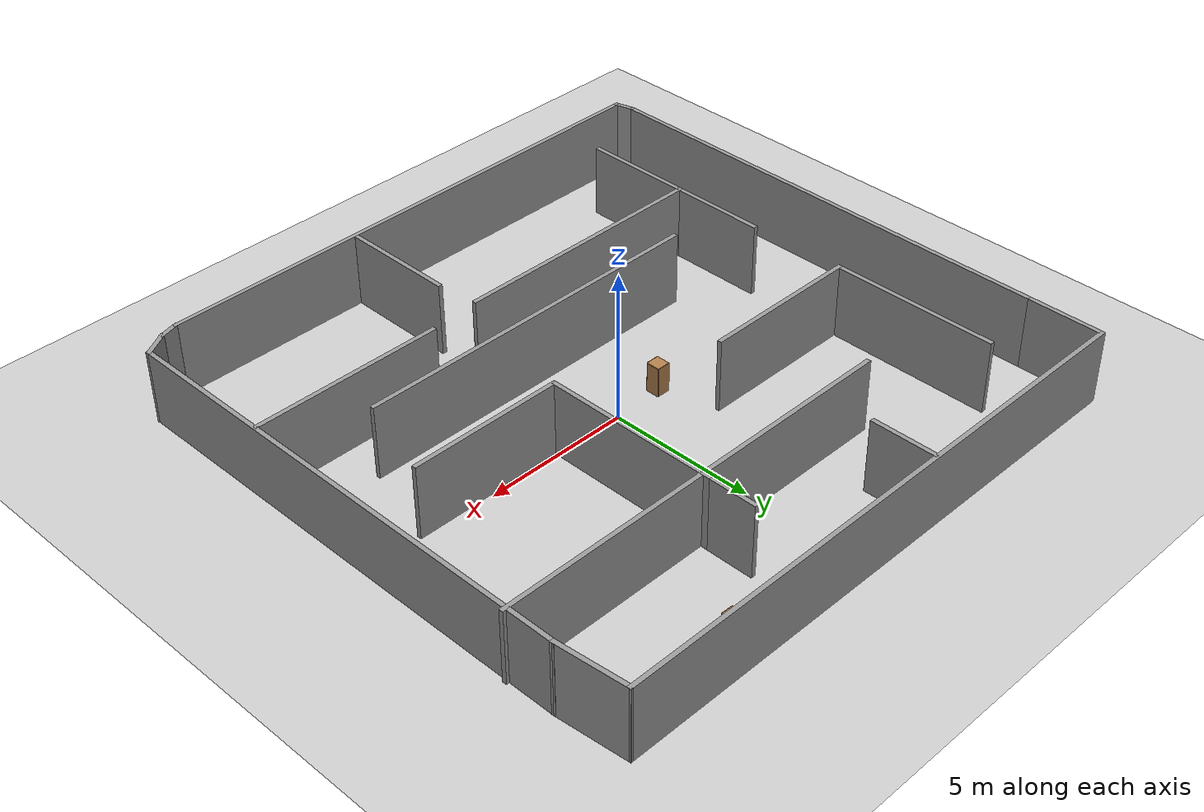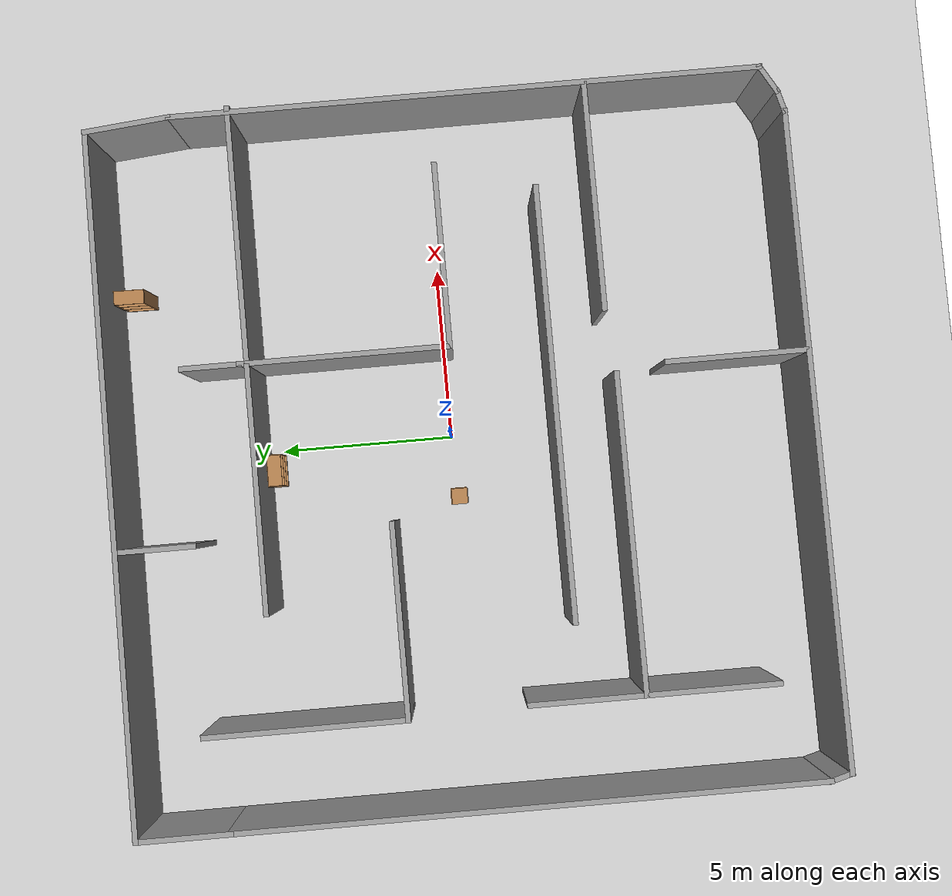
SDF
<sdf version="1.7">
 <world name="default">
  <light name="sun" type="directional">
   <pose>0 0 10 0 -0 0</pose>
   <diffuse>0.8 0.8 0.8 1</diffuse>
   <specular>0.2 0.2 0.2 1</specular>
   <attenuation>
    <range>1000</range>
    <constant>0.9</constant>
    <linear>0.01</linear>
    <quadratic>0.001</quadratic>
   </attenuation>
   <direction>-0.5 0.1 -0.9</direction>
   <spot><inner_angle>0</inner_angle><outer_angle>0</outer_angle><falloff>0</falloff></spot>
  </light>
  <model name="ground_plane">
   <static>1</static>
   <link name="link">
    <collision name="collision">
     <geometry><plane><normal>0 0 1</normal><size>100 100</size></plane></geometry>
     <surface><friction><ode><mu>100</mu><mu2>50</mu2></ode></friction></surface>
    </collision>
    <visual name="visual">
     <cast_shadows>0</cast_shadows>
     <geometry><plane><normal>0 0 1</normal><size>100 100</size></plane></geometry>
     <material>
      <script><uri>file://media/materials/scripts/gazebo.material</uri><name>Gazebo/Grey</name></script>
     </material>
    </visual>
   </link>
  </model>
  <gravity>0 0 -9.8</gravity>
  <magnetic_field>6e-06 2.3e-05 -4.2e-05</magnetic_field>
  <atmosphere type="adiabatic"/>
  <physics type="ode">
   <max_step_size>0.001</max_step_size>
   <real_time_factor>1</real_time_factor>
   <real_time_update_rate>1000</real_time_update_rate>
  </physics>
  <scene><ambient>0.4 0.4 0.4 1</ambient><background>0.7 0.7 0.7 1</background><shadows>1</shadows></scene>
  <audio><device>default</device></audio>
  <spherical_coordinates>
   <surface_model>EARTH_WGS84</surface_model>
   <latitude_deg>0</latitude_deg>
   <longitude_deg>0</longitude_deg>
   <elevation>0</elevation>
   <heading_deg>0</heading_deg>
  </spherical_coordinates>
  <model name="RightRoom">
   <pose>-0.390822 -0.305689 0 0 -0 0</pose>
   <link name="Wall_11">
    <collision name="Wall_11_Collision">
     <geometry><box><size>2.75 0.15 2.5</size></box></geometry>
     <pose>0 0 1.25 0 -0 0</pose>
    </collision>
    <visual name="Wall_11_Visual">
     <pose>0 0 1.25 0 -0 0</pose>
     <geometry><box><size>2.75 0.15 2.5</size></box></geometry>
     <material>
      <script><uri>file://media/materials/scripts/gazebo.material</uri><name>Gazebo/Grey</name></script>
      <ambient>1 1 1 1</ambient>
     </material>
     <meta><layer>0</layer></meta>
    </visual>
    <pose>-9.95326 8.46986 0 0 -0 1.5708</pose>
   </link>
   <link name="Wall_12">
    <collision name="Wall_12_Collision">
     <geometry><box><size>19.75 0.15 2.5</size></box></geometry>
     <pose>0 0 1.25 0 -0 0</pose>
    </collision>
    <visual name="Wall_12_Visual">
     <pose>0 0 1.25 0 -0 0</pose>
     <geometry><box><size>19.75 0.15 2.5</size></box></geometry>
     <material>
      <script><uri>file://media/materials/scripts/gazebo.material</uri><name>Gazebo/Grey</name></script>
      <ambient>1 1 1 1</ambient>
     </material>
     <meta><layer>0</layer></meta>
    </visual>
    <pose>-0.15326 9.76986 0 0 -0 0</pose>
   </link>
   <link name="Wall_13">
    <collision name="Wall_13_Collision">
     <geometry><box><size>2.50963 0.15 2.5</size></box></geometry>
     <pose>0 0 1.25 0 -0 0</pose>
    </collision>
    <visual name="Wall_13_Visual">
     <pose>0 0 1.25 0 -0 0</pose>
     <geometry><box><size>2.50963 0.15 2.5</size></box></geometry>
     <material>
      <script><uri>file://media/materials/scripts/gazebo.material</uri><name>Gazebo/Grey</name></script>
      <ambient>1 1 1 1</ambient>
     </material>
     <meta><layer>0</layer></meta>
    </visual>
    <pose>9.75723 8.59523 0 0 -0 -1.47701</pose>
   </link>
   <link name="Wall_15">
    <collision name="Wall_15_Collision">
     <geometry><box><size>5.75 0.15 2.5</size></box></geometry>
     <pose>0 0 1.25 0 -0 0</pose>
    </collision>
    <visual name="Wall_15_Visual">
     <pose>0 0 1.25 0 -0 0</pose>
     <geometry><box><size>5.75 0.15 2.5</size></box></geometry>
     <material>
      <script><uri>file://media/materials/scripts/gazebo.material</uri><name>Gazebo/Grey</name></script>
      <ambient>1 1 1 1</ambient>
     </material>
     <meta><layer>0</layer></meta>
    </visual>
    <pose>-7.32191 4.93089 0 0 -0 -1.5708</pose>
   </link>
   <link name="Wall_16">
    <collision name="Wall_16_Collision">
     <geometry><box><size>5.5 0.15 2.5</size></box></geometry>
     <pose>0 0 1.25 0 -0 0</pose>
    </collision>
    <visual name="Wall_16_Visual">
     <pose>0 0 1.25 0 -0 0</pose>
     <geometry><box><size>5.5 0.15 2.5</size></box></geometry>
     <material>
      <script><uri>file://media/materials/scripts/gazebo.material</uri><name>Gazebo/Grey</name></script>
      <ambient>1 1 1 1</ambient>
     </material>
     <meta><layer>0</layer></meta>
    </visual>
    <pose>-4.64691 2.13089 0 0 -0 0</pose>
   </link>
   <link name="Wall_18">
    <collision name="Wall_18_Collision">
     <geometry><box><size>7 0.15 2.5</size></box></geometry>
     <pose>0 0 1.25 0 -0 0</pose>
    </collision>
    <visual name="Wall_18_Visual">
     <pose>0 0 1.25 0 -0 0</pose>
     <geometry><box><size>7 0.15 2.5</size></box></geometry>
     <material>
      <script><uri>file://media/materials/scripts/gazebo.material</uri><name>Gazebo/Grey</name></script>
      <ambient>1 1 1 1</ambient>
     </material>
     <meta><layer>0</layer></meta>
    </visual>
    <pose>-7.21551 -4.63178 0 0 -0 -1.5708</pose>
   </link>
   <link name="Wall_20">
    <collision name="Wall_20_Collision">
     <geometry><box><size>9 0.15 2.5</size></box></geometry>
     <pose>0 0 1.25 0 -0 0</pose>
    </collision>
    <visual name="Wall_20_Visual">
     <pose>0 0 1.25 0 -0 0</pose>
     <geometry><box><size>9 0.15 2.5</size></box></geometry>
     <material>
      <script><uri>file://media/materials/scripts/gazebo.material</uri><name>Gazebo/Grey</name></script>
      <ambient>1 1 1 1</ambient>
     </material>
     <meta><layer>0</layer></meta>
    </visual>
    <pose>-2.79051 -4.3988 0 0 -0 0</pose>
   </link>
   <link name="Wall_22">
    <collision name="Wall_22_Collision">
     <geometry><box><size>4 0.15 2.5</size></box></geometry>
     <pose>0 0 1.25 0 -0 0</pose>
    </collision>
    <visual name="Wall_22_Visual">
     <pose>0 0 1.25 0 -0 0</pose>
     <geometry><box><size>4 0.15 2.5</size></box></geometry>
     <material>
      <script><uri>file://media/materials/scripts/gazebo.material</uri><name>Gazebo/Grey</name></script>
      <ambient>1 1 1 1</ambient>
     </material>
     <meta><layer>0</layer></meta>
    </visual>
    <pose>1.82856 -7.76021 0 0 -0 -1.5708</pose>
   </link>
   <link name="Wall_24">
    <collision name="Wall_24_Collision">
     <geometry><box><size>6.5 0.15 2.5</size></box></geometry>
     <pose>0 0 1.25 0 -0 0</pose>
    </collision>
    <visual name="Wall_24_Visual">
     <pose>0 0 1.25 0 -0 0</pose>
     <geometry><box><size>6.5 0.15 2.5</size></box></geometry>
     <material>
      <script><uri>file://media/materials/scripts/gazebo.material</uri><name>Gazebo/Grey</name></script>
      <ambient>1 1 1 1</ambient>
     </material>
     <meta><layer>0</layer></meta>
    </visual>
    <pose>6.63362 -4.2392 0 0 -0 3.14159</pose>
   </link>
   <link name="Wall_26">
    <collision name="Wall_26_Collision">
     <geometry><box><size>12.25 0.15 2.5</size></box></geometry>
     <pose>0 0 1.25 0 -0 0</pose>
    </collision>
    <visual name="Wall_26_Visual">
     <pose>0 0 1.25 0 -0 0</pose>
     <geometry><box><size>12.25 0.15 2.5</size></box></geometry>
     <material>
      <script><uri>file://media/materials/scripts/gazebo.material</uri><name>Gazebo/Grey</name></script>
      <ambient>1 1 1 1</ambient>
     </material>
     <meta><layer>0</layer></meta>
    </visual>
    <pose>0.962508 -2.64319 0 0 -0 0</pose>
   </link>
   <link name="Wall_28">
    <collision name="Wall_28_Collision">
     <geometry><box><size>14.25 0.15 2.5</size></box></geometry>
     <pose>0 0 1.25 0 -0 0</pose>
    </collision>
    <visual name="Wall_28_Visual">
     <pose>0 0 1.25 0 -0 0</pose>
     <geometry><box><size>14.25 0.15 2.5</size></box></geometry>
     <material>
      <script><uri>file://media/materials/scripts/gazebo.material</uri><name>Gazebo/Grey</name></script>
      <ambient>1 1 1 1</ambient>
     </material>
     <meta><layer>0</layer></meta>
    </visual>
    <pose>2.92012 5.76248 0 0 -0 0</pose>
   </link>
   <link name="Wall_30">
    <collision name="Wall_30_Collision">
     <geometry><box><size>6 0.15 2.5</size></box></geometry>
     <pose>0 0 1.25 0 -0 0</pose>
    </collision>
    <visual name="Wall_30_Visual">
     <pose>0 0 1.25 0 -0 0</pose>
     <geometry><box><size>6 0.15 2.5</size></box></geometry>
     <material>
      <script><uri>file://media/materials/scripts/gazebo.material</uri><name>Gazebo/Grey</name></script>
      <ambient>1 1 1 1</ambient>
     </material>
     <meta><layer>0</layer></meta>
    </visual>
    <pose>2.78617 3.05028 0 0 -0 -1.5708</pose>
   </link>
   <link name="Wall_31">
    <collision name="Wall_31_Collision">
     <geometry><box><size>5.25 0.15 2.5</size></box></geometry>
     <pose>0 0 1.25 0 -0 0</pose>
    </collision>
    <visual name="Wall_31_Visual">
     <pose>0 0 1.25 0 -0 0</pose>
     <geometry><box><size>5.25 0.15 2.5</size></box></geometry>
     <material>
      <script><uri>file://media/materials/scripts/gazebo.material</uri><name>Gazebo/Grey</name></script>
      <ambient>1 1 1 1</ambient>
     </material>
     <meta><layer>0</layer></meta>
    </visual>
    <pose>5.33617 0.125278 0 0 -0 0</pose>
   </link>
   <link name="Wall_33">
    <collision name="Wall_33_Collision">
     <geometry><box><size>1.75 0.15 2.5</size></box></geometry>
     <pose>0 0 1.25 0 -0 0</pose>
    </collision>
    <visual name="Wall_33_Visual">
     <pose>0 0 1.25 0 -0 0</pose>
     <geometry><box><size>1.75 0.15 2.5</size></box></geometry>
     <material>
      <script><uri>file://media/materials/scripts/gazebo.material</uri><name>Gazebo/Grey</name></script>
      <ambient>1 1 1 1</ambient>
     </material>
     <meta><layer>0</layer></meta>
    </visual>
    <pose>2.78617 6.77528 0 0 -0 1.5708</pose>
   </link>
   <link name="Wall_35">
    <collision name="Wall_35_Collision">
     <geometry><box><size>2.25 0.15 2.5</size></box></geometry>
     <pose>0 0 1.25 0 -0 0</pose>
    </collision>
    <visual name="Wall_35_Visual">
     <pose>0 0 1.25 0 -0 0</pose>
     <geometry><box><size>2.25 0.15 2.5</size></box></geometry>
     <material>
      <script><uri>file://media/materials/scripts/gazebo.material</uri><name>Gazebo/Grey</name></script>
      <ambient>1 1 1 1</ambient>
     </material>
     <meta><layer>0</layer></meta>
    </visual>
    <pose>-2.10827 8.64931 0 0 -0 -1.5708</pose>
   </link>
   <link name="Wall_4">
    <collision name="Wall_4_Collision">
     <geometry><box><size>16.5 0.15 2.5</size></box></geometry>
     <pose>0 0 1.25 0 -0 0</pose>
    </collision>
    <visual name="Wall_4_Visual">
     <pose>0 0 1.25 0 -0 0</pose>
     <geometry><box><size>16.5 0.15 2.5</size></box></geometry>
     <material>
      <script><uri>file://media/materials/scripts/gazebo.material</uri><name>Gazebo/Grey</name></script>
      <ambient>1 1 1 1</ambient>
     </material>
     <meta><layer>0</layer></meta>
    </visual>
    <pose>-9.95326 -1.00514 0 0 -0 -1.5708</pose>
   </link>
   <link name="Wall_5">
    <collision name="Wall_5_Collision">
     <geometry><box><size>0.75 0.15 2.5</size></box></geometry>
     <pose>0 0 1.25 0 -0 0</pose>
    </collision>
    <visual name="Wall_5_Visual">
     <pose>0 0 1.25 0 -0 0</pose>
     <geometry><box><size>0.75 0.15 2.5</size></box></geometry>
     <material>
      <script><uri>file://media/materials/scripts/gazebo.material</uri><name>Gazebo/Grey</name></script>
      <ambient>1 1 1 1</ambient>
     </material>
     <meta><layer>0</layer></meta>
    </visual>
    <pose>-9.87561 -9.46992 0 0 -0 -1.309</pose>
   </link>
   <link name="Wall_6">
    <collision name="Wall_6_Collision">
     <geometry><box><size>18.5 0.15 2.5</size></box></geometry>
     <pose>0 0 1.25 0 -0 0</pose>
    </collision>
    <visual name="Wall_6_Visual">
     <pose>0 0 1.25 0 -0 0</pose>
     <geometry><box><size>18.5 0.15 2.5</size></box></geometry>
     <material>
      <script><uri>file://media/materials/scripts/gazebo.material</uri><name>Gazebo/Grey</name></script>
      <ambient>1 1 1 1</ambient>
     </material>
     <meta><layer>0</layer></meta>
    </visual>
    <pose>-0.622968 -9.7597 0 0 -0 0</pose>
   </link>
   <link name="Wall_7">
    <collision name="Wall_7_Collision">
     <geometry><box><size>0.75 0.15 2.5</size></box></geometry>
     <pose>0 0 1.25 0 -0 0</pose>
    </collision>
    <visual name="Wall_7_Visual">
     <pose>0 0 1.25 0 -0 0</pose>
     <geometry><box><size>0.75 0.15 2.5</size></box></geometry>
     <material>
      <script><uri>file://media/materials/scripts/gazebo.material</uri><name>Gazebo/Grey</name></script>
      <ambient>1 1 1 1</ambient>
     </material>
     <meta><layer>0</layer></meta>
    </visual>
    <pose>8.84181 -9.68205 0 0 -0 0.261799</pose>
   </link>
   <link name="Wall_8">
    <collision name="Wall_8_Collision">
     <geometry><box><size>1 0.15 2.5</size></box></geometry>
     <pose>0 0 1.25 0 -0 0</pose>
    </collision>
    <visual name="Wall_8_Visual">
     <pose>0 0 1.25 0 -0 0</pose>
     <geometry><box><size>1 0.15 2.5</size></box></geometry>
     <material>
      <script><uri>file://media/materials/scripts/gazebo.material</uri><name>Gazebo/Grey</name></script>
      <ambient>1 1 1 1</ambient>
     </material>
     <meta><layer>0</layer></meta>
    </visual>
    <pose>9.49965 -9.3919 0 0 -0 0.523599</pose>
   </link>
   <link name="Wall_9">
    <collision name="Wall_9_Collision">
     <geometry><box><size>16.75 0.15 2.5</size></box></geometry>
     <pose>0 0 1.25 0 -0 0</pose>
    </collision>
    <visual name="Wall_9_Visual">
     <pose>0 0 1.25 0 -0 0</pose>
     <geometry><box><size>16.75 0.15 2.5</size></box></geometry>
     <material>
      <script><uri>file://media/materials/scripts/gazebo.material</uri><name>Gazebo/Grey</name></script>
      <ambient>1 1 1 1</ambient>
     </material>
     <meta><layer>0</layer></meta>
    </visual>
    <pose>9.86771 -0.879405 0 0 -0 1.5708</pose>
   </link>
   <static>1</static>
  </model>
  <model name="bookshelf">
   <static>1</static>
   <link name="link">
    <inertial><mass>1</mass></inertial>
    <collision name="back">
     <pose>0 0.005 0.6 0 -0 0</pose>
     <geometry><box><size>0.9 0.01 1.2</size></box></geometry>
    </collision>
    <visual name="visual1">
     <pose>0 0.005 0.6 0 -0 0</pose>
     <geometry><box><size>0.9 0.01 1.2</size></box></geometry>
     <material>
      <script><uri>file://media/materials/scripts/gazebo.material</uri><name>Gazebo/Wood</name></script>
     </material>
    </visual>
    <collision name="left_side">
     <pose>0.45 -0.195 0.6 0 -0 0</pose>
     <geometry><box><size>0.02 0.4 1.2</size></box></geometry>
    </collision>
    <visual name="visual2">
     <pose>0.45 -0.195 0.6 0 -0 0</pose>
     <geometry><box><size>0.02 0.4 1.2</size></box></geometry>
     <material>
      <script><uri>file://media/materials/scripts/gazebo.material</uri><name>Gazebo/Wood</name></script>
     </material>
    </visual>
    <collision name="right_side">
     <pose>-0.45 -0.195 0.6 0 -0 0</pose>
     <geometry><box><size>0.02 0.4 1.2</size></box></geometry>
    </collision>
    <visual name="visual3">
     <pose>-0.45 -0.195 0.6 0 -0 0</pose>
     <geometry><box><size>0.02 0.4 1.2</size></box></geometry>
     <material>
      <script><uri>file://media/materials/scripts/gazebo.material</uri><name>Gazebo/Wood</name></script>
     </material>
    </visual>
    <collision name="bottom">
     <pose>0 -0.195 0.03 0 -0 0</pose>
     <geometry><box><size>0.88 0.4 0.06</size></box></geometry>
    </collision>
    <visual name="visual4">
     <pose>0 -0.195 0.03 0 -0 0</pose>
     <geometry><box><size>0.88 0.4 0.06</size></box></geometry>
     <material>
      <script><uri>file://media/materials/scripts/gazebo.material</uri><name>Gazebo/Wood</name></script>
     </material>
    </visual>
    <collision name="top">
     <pose>0 -0.195 1.19 0 -0 0</pose>
     <geometry><box><size>0.88 0.4 0.02</size></box></geometry>
    </collision>
    <visual name="visual5">
     <pose>0 -0.195 1.19 0 -0 0</pose>
     <geometry><box><size>0.88 0.4 0.02</size></box></geometry>
     <material>
      <script><uri>file://media/materials/scripts/gazebo.material</uri><name>Gazebo/Wood</name></script>
     </material>
    </visual>
    <collision name="low_shelf">
     <pose>0 -0.195 0.43 0 -0 0</pose>
     <geometry><box><size>0.88 0.4 0.02</size></box></geometry>
    </collision>
    <visual name="visual6">
     <pose>0 -0.195 0.43 0 -0 0</pose>
     <geometry><box><size>0.88 0.4 0.02</size></box></geometry>
     <material>
      <script><uri>file://media/materials/scripts/gazebo.material</uri><name>Gazebo/Wood</name></script>
     </material>
    </visual>
    <collision name="high_shelf">
     <pose>0 -0.195 0.8 0 -0 0</pose>
     <geometry><box><size>0.88 0.4 0.02</size></box></geometry>
    </collision>
    <visual name="visual7">
     <pose>0 -0.195 0.8 0 -0 0</pose>
     <geometry><box><size>0.88 0.4 0.02</size></box></geometry>
     <material>
      <script><uri>file://media/materials/scripts/gazebo.material</uri><name>Gazebo/Wood</name></script>
     </material>
    </visual>
   </link>
   <pose>-0.568259 5.3386 0 0 -0 0</pose>
  </model>
  <model name="bookshelf_0">
   <static>1</static>
   <link name="link">
    <inertial><mass>1</mass></inertial>
    <collision name="back">
     <pose>0 0.005 0.6 0 -0 0</pose>
     <geometry><box><size>0.9 0.01 1.2</size></box></geometry>
    </collision>
    <visual name="visual1">
     <pose>0 0.005 0.6 0 -0 0</pose>
     <geometry><box><size>0.9 0.01 1.2</size></box></geometry>
     <material>
      <script><uri>file://media/materials/scripts/gazebo.material</uri><name>Gazebo/Wood</name></script>
     </material>
    </visual>
    <collision name="left_side">
     <pose>0.45 -0.195 0.6 0 -0 0</pose>
     <geometry><box><size>0.02 0.4 1.2</size></box></geometry>
    </collision>
    <visual name="visual2">
     <pose>0.45 -0.195 0.6 0 -0 0</pose>
     <geometry><box><size>0.02 0.4 1.2</size></box></geometry>
     <material>
      <script><uri>file://media/materials/scripts/gazebo.material</uri><name>Gazebo/Wood</name></script>
     </material>
    </visual>
    <collision name="right_side">
     <pose>-0.45 -0.195 0.6 0 -0 0</pose>
     <geometry><box><size>0.02 0.4 1.2</size></box></geometry>
    </collision>
    <visual name="visual3">
     <pose>-0.45 -0.195 0.6 0 -0 0</pose>
     <geometry><box><size>0.02 0.4 1.2</size></box></geometry>
     <material>
      <script><uri>file://media/materials/scripts/gazebo.material</uri><name>Gazebo/Wood</name></script>
     </material>
    </visual>
    <collision name="bottom">
     <pose>0 -0.195 0.03 0 -0 0</pose>
     <geometry><box><size>0.88 0.4 0.06</size></box></geometry>
    </collision>
    <visual name="visual4">
     <pose>0 -0.195 0.03 0 -0 0</pose>
     <geometry><box><size>0.88 0.4 0.06</size></box></geometry>
     <material>
      <script><uri>file://media/materials/scripts/gazebo.material</uri><name>Gazebo/Wood</name></script>
     </material>
    </visual>
    <collision name="top">
     <pose>0 -0.195 1.19 0 -0 0</pose>
     <geometry><box><size>0.88 0.4 0.02</size></box></geometry>
    </collision>
    <visual name="visual5">
     <pose>0 -0.195 1.19 0 -0 0</pose>
     <geometry><box><size>0.88 0.4 0.02</size></box></geometry>
     <material>
      <script><uri>file://media/materials/scripts/gazebo.material</uri><name>Gazebo/Wood</name></script>
     </material>
    </visual>
    <collision name="low_shelf">
     <pose>0 -0.195 0.43 0 -0 0</pose>
     <geometry><box><size>0.88 0.4 0.02</size></box></geometry>
    </collision>
    <visual name="visual6">
     <pose>0 -0.195 0.43 0 -0 0</pose>
     <geometry><box><size>0.88 0.4 0.02</size></box></geometry>
     <material>
      <script><uri>file://media/materials/scripts/gazebo.material</uri><name>Gazebo/Wood</name></script>
     </material>
    </visual>
    <collision name="high_shelf">
     <pose>0 -0.195 0.8 0 -0 0</pose>
     <geometry><box><size>0.88 0.4 0.02</size></box></geometry>
    </collision>
    <visual name="visual7">
     <pose>0 -0.195 0.8 0 -0 0</pose>
     <geometry><box><size>0.88 0.4 0.02</size></box></geometry>
     <material>
      <script><uri>file://media/materials/scripts/gazebo.material</uri><name>Gazebo/Wood</name></script>
     </material>
    </visual>
   </link>
   <pose>4.98364 8.8612 0 0 -0.06583 -1.59861</pose>
  </model>
  <model name="cabinet">
   <static>1</static>
   <link name="cabinet_bottom_plate">
    <inertial>
     <pose>0 0 -1 0 -0 0</pose>
     <inertia><ixx>2.05</ixx><ixy>0</ixy><ixz>0</ixz><iyy>2.05</iyy><iyz>0</iyz><izz>2.05</izz></inertia>
     <mass>25</mass>
    </inertial>
    <collision name="cabinet_bottom_plate_geom">
     <pose>0 0 0.01 0 -0 0</pose>
     <geometry><box><size>0.45 0.45 0.02</size></box></geometry>
    </collision>
    <visual name="cabinet_bottom_plate_geom_visual">
     <pose>0 0 0.01 0 -0 0</pose>
     <geometry><box><size>0.45 0.45 0.02</size></box></geometry>
     <material>
      <script><uri>file://media/materials/scripts/gazebo.material</uri><name>Gazebo/Wood</name></script>
     </material>
    </visual>
    <collision name="cabinet_bottom_plate_geom_cabinet_back_plate">
     <pose>0.235 0 0.51 0 -0 0</pose>
     <geometry><box><size>0.02 0.45 1.02</size></box></geometry>
    </collision>
    <visual name="cabinet_bottom_plate_geom_cabinet_back_plate_visual">
     <pose>0.235 0 0.51 0 -0 0</pose>
     <geometry><box><size>0.02 0.45 1.02</size></box></geometry>
     <material>
      <script><uri>file://media/materials/scripts/gazebo.material</uri><name>Gazebo/Wood</name></script>
     </material>
    </visual>
    <collision name="cabinet_bottom_plate_geom_cabinet_left_plate">
     <pose>0 0.235 0.51 0 -0 0</pose>
     <geometry><box><size>0.45 0.02 1.02</size></box></geometry>
    </collision>
    <visual name="cabinet_bottom_plate_geom_cabinet_left_plate_visual">
     <pose>0 0.235 0.51 0 -0 0</pose>
     <geometry><box><size>0.45 0.02 1.02</size></box></geometry>
     <material>
      <script><uri>file://media/materials/scripts/gazebo.material</uri><name>Gazebo/Wood</name></script>
     </material>
    </visual>
    <collision name="cabinet_bottom_plate_geom_cabinet_middle_plate">
     <pose>0 0 0.51 0 -0 0</pose>
     <geometry><box><size>0.45 0.45 0.02</size></box></geometry>
    </collision>
    <visual name="cabinet_bottom_plate_geom_cabinet_middle_plate_visual">
     <pose>0 0 0.51 0 -0 0</pose>
     <geometry><box><size>0.45 0.45 0.02</size></box></geometry>
     <material>
      <script><uri>file://media/materials/scripts/gazebo.material</uri><name>Gazebo/Wood</name></script>
     </material>
    </visual>
    <collision name="cabinet_bottom_plate_geom_cabinet_right_plate">
     <pose>0 -0.235 0.51 0 -0 0</pose>
     <geometry><box><size>0.45 0.02 1.02</size></box></geometry>
    </collision>
    <visual name="cabinet_bottom_plate_geom_cabinet_right_plate_visual">
     <pose>0 -0.235 0.51 0 -0 0</pose>
     <geometry><box><size>0.45 0.02 1.02</size></box></geometry>
     <material>
      <script><uri>file://media/materials/scripts/gazebo.material</uri><name>Gazebo/Wood</name></script>
     </material>
    </visual>
    <collision name="cabinet_bottom_plate_geom_cabinet_top_plate">
     <pose>0 0 1.01 0 -0 0</pose>
     <geometry><box><size>0.45 0.45 0.02</size></box></geometry>
    </collision>
    <visual name="cabinet_bottom_plate_geom_cabinet_top_plate_visual">
     <pose>0 0 1.01 0 -0 0</pose>
     <geometry><box><size>0.45 0.45 0.02</size></box></geometry>
     <material>
      <script><uri>file://media/materials/scripts/gazebo.material</uri><name>Gazebo/Wood</name></script>
     </material>
    </visual>
   </link>
   <pose>-1.75755 -0.087035 0 0 -0 0</pose>
  </model>
 </world>
</sdf>
